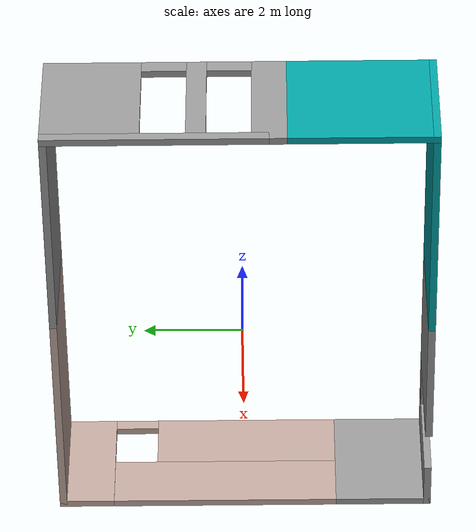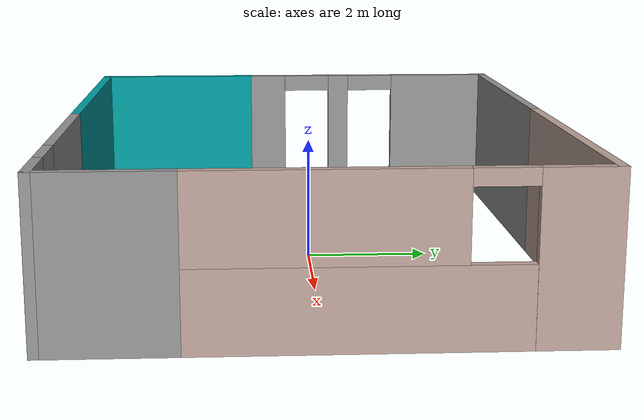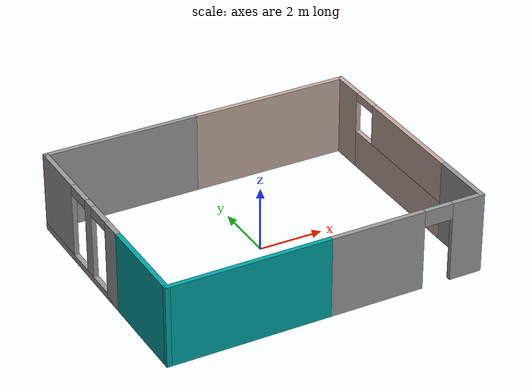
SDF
<?xml version='1.0'?>
<sdf version='1.7'>
  <model name='my_building_p4_small'>
    <link name='Wall_16'>
      <pose>-2.425 3.85 0 0 -0 0</pose>
      <self_collide>0</self_collide>
      <enable_wind>0</enable_wind>
      <kinematic>0</kinematic>
      <gravity>1</gravity>
      <inertial>
        <mass>1</mass>
        <pose>0 0 0 0 -0 0</pose>
        <inertia>
          <ixx>1</ixx>
          <ixy>0</ixy>
          <ixz>0</ixz>
          <iyy>1</iyy>
          <iyz>0</iyz>
          <izz>1</izz>
        </inertia>
      </inertial>
      <visual name='Wall_16_Visual'>
        <pose>-0.075 0 1.25 0 -0 0</pose>
        <geometry>
          <box>
            <size>4.85 0.15 2.5</size>
          </box>
        </geometry>
        <material>
          <script>
            <uri>file://media/materials/scripts/gazebo.material</uri>
            <name>Gazebo/Grey</name>
          </script>
          <ambient>1 1 1 1</ambient>
          <shader type='pixel'>
            <normal_map>__default__</normal_map>
          </shader>
          <diffuse>0.7 0.7 0.7 1</diffuse>
          <specular>0.01 0.01 0.01 1</specular>
          <emissive>0 0 0 1</emissive>
        </material>
        <meta>
          <layer>0</layer>
        </meta>
        <transparency>0</transparency>
        <cast_shadows>1</cast_shadows>
      </visual>
      <collision name='Wall_16_Collision'>
        <laser_retro>0</laser_retro>
        <max_contacts>10</max_contacts>
        <pose>-0.075 0 1.25 0 -0 0</pose>
        <geometry>
          <box>
            <size>4.85 0.15 2.5</size>
          </box>
        </geometry>
        <surface>
          <friction>
            <ode>
              <mu>1</mu>
              <mu2>1</mu2>
              <fdir1>0 0 0</fdir1>
              <slip1>0</slip1>
              <slip2>0</slip2>
            </ode>
            <torsional>
              <coefficient>1</coefficient>
              <patch_radius>0</patch_radius>
              <surface_radius>0</surface_radius>
              <use_patch_radius>1</use_patch_radius>
              <ode>
                <slip>0</slip>
              </ode>
            </torsional>
          </friction>
          <bounce>
            <restitution_coefficient>0</restitution_coefficient>
            <threshold>1e+06</threshold>
          </bounce>
          <contact>
            <collide_without_contact>0</collide_without_contact>
            <collide_without_contact_bitmask>1</collide_without_contact_bitmask>
            <collide_bitmask>1</collide_bitmask>
            <ode>
              <soft_cfm>0</soft_cfm>
              <soft_erp>0.2</soft_erp>
              <kp>1e+13</kp>
              <kd>1</kd>
              <max_vel>0.01</max_vel>
              <min_depth>0</min_depth>
            </ode>
            <bullet>
              <split_impulse>1</split_impulse>
              <split_impulse_penetration_threshold>-0.01</split_impulse_penetration_threshold>
              <soft_cfm>0</soft_cfm>
              <soft_erp>0.2</soft_erp>
              <kp>1e+13</kp>
              <kd>1</kd>
            </bullet>
          </contact>
        </surface>
      </collision>
    </link>
    <link name='Wall_17'>
      <pose>2.425 3.85 0 0 -0 0</pose>
      <self_collide>0</self_collide>
      <enable_wind>0</enable_wind>
      <kinematic>0</kinematic>
      <gravity>1</gravity>
      <inertial>
        <mass>1</mass>
        <pose>0 0 0 0 -0 0</pose>
        <inertia>
          <ixx>1</ixx>
          <ixy>0</ixy>
          <ixz>0</ixz>
          <iyy>1</iyy>
          <iyz>0</iyz>
          <izz>1</izz>
        </inertia>
      </inertial>
      <visual name='Wall_17_Visual'>
        <pose>0 0 1.25 0 -0 0</pose>
        <geometry>
          <box>
            <size>5 0.15 2.5</size>
          </box>
        </geometry>
        <material>
          <script>
            <uri>file://media/materials/scripts/gazebo.material</uri>
            <name>Gazebo/Grey</name>
          </script>
          <ambient>0.76 0.66 0.62 1</ambient>
          <shader type='pixel'>
            <normal_map>__default__</normal_map>
          </shader>
          <diffuse>0.76 0.66 0.62 1</diffuse>
          <specular>0.01 0.01 0.01 1</specular>
          <emissive>0 0 0 1</emissive>
        </material>
        <meta>
          <layer>0</layer>
        </meta>
        <transparency>0</transparency>
        <cast_shadows>1</cast_shadows>
      </visual>
      <collision name='Wall_17_Collision'>
        <laser_retro>0</laser_retro>
        <max_contacts>10</max_contacts>
        <pose>0 0 1.25 0 -0 0</pose>
        <geometry>
          <box>
            <size>5 0.15 2.5</size>
          </box>
        </geometry>
        <surface>
          <friction>
            <ode>
              <mu>1</mu>
              <mu2>1</mu2>
              <fdir1>0 0 0</fdir1>
              <slip1>0</slip1>
              <slip2>0</slip2>
            </ode>
            <torsional>
              <coefficient>1</coefficient>
              <patch_radius>0</patch_radius>
              <surface_radius>0</surface_radius>
              <use_patch_radius>1</use_patch_radius>
              <ode>
                <slip>0</slip>
              </ode>
            </torsional>
          </friction>
          <bounce>
            <restitution_coefficient>0</restitution_coefficient>
            <threshold>1e+06</threshold>
          </bounce>
          <contact>
            <collide_without_contact>0</collide_without_contact>
            <collide_without_contact_bitmask>1</collide_without_contact_bitmask>
            <collide_bitmask>1</collide_bitmask>
            <ode>
              <soft_cfm>0</soft_cfm>
              <soft_erp>0.2</soft_erp>
              <kp>1e+13</kp>
              <kd>1</kd>
              <max_vel>0.01</max_vel>
              <min_depth>0</min_depth>
            </ode>
            <bullet>
              <split_impulse>1</split_impulse>
              <split_impulse_penetration_threshold>-0.01</split_impulse_penetration_threshold>
              <soft_cfm>0</soft_cfm>
              <soft_erp>0.2</soft_erp>
              <kp>1e+13</kp>
              <kd>1</kd>
            </bullet>
          </contact>
        </surface>
      </collision>
    </link>
    <link name='Wall_18'>
      <pose>4.85 2.425 0 0 0 -1.5708</pose>
      <self_collide>0</self_collide>
      <enable_wind>0</enable_wind>
      <kinematic>0</kinematic>
      <gravity>1</gravity>
      <inertial>
        <mass>1</mass>
        <pose>0 0 0 0 -0 0</pose>
        <inertia>
          <ixx>1</ixx>
          <ixy>0</ixy>
          <ixz>0</ixz>
          <iyy>1</iyy>
          <iyz>0</iyz>
          <izz>1</izz>
        </inertia>
      </inertial>
      <visual name='Wall_18_Visual_0'>
        <pose>-0.925323 0 1.25 0 -0 0</pose>
        <geometry>
          <box>
            <size>1.14935 0.15 2.5</size>
          </box>
        </geometry>
        <material>
          <script>
            <uri>file://media/materials/scripts/gazebo.material</uri>
            <name>Gazebo/Grey</name>
          </script>
          <ambient>0.76 0.66 0.62 1</ambient>
          <shader type='pixel'>
            <normal_map>__default__</normal_map>
          </shader>
          <diffuse>0.76 0.66 0.62 1</diffuse>
          <specular>0.01 0.01 0.01 1</specular>
          <emissive>0 0 0 1</emissive>
        </material>
        <meta>
          <layer>0</layer>
        </meta>
        <transparency>0</transparency>
        <cast_shadows>1</cast_shadows>
      </visual>
      <visual name='Wall_18_Visual_3'>
        <pose>0.1 0 2.375 0 -0 0</pose>
        <geometry>
          <box>
            <size>0.9 0.15 0.25</size>
          </box>
        </geometry>
        <material>
          <script>
            <uri>file://media/materials/scripts/gazebo.material</uri>
            <name>Gazebo/Grey</name>
          </script>
          <ambient>0.76 0.66 0.62 1</ambient>
          <shader type='pixel'>
            <normal_map>__default__</normal_map>
          </shader>
          <diffuse>0.76 0.66 0.62 1</diffuse>
          <specular>0.01 0.01 0.01 1</specular>
          <emissive>0 0 0 1</emissive>
        </material>
        <meta>
          <layer>0</layer>
        </meta>
        <transparency>0</transparency>
        <cast_shadows>1</cast_shadows>
      </visual>
      <visual name='Wall_18_Visual_1'>
        <pose>2 0 0.6 0 -0 0</pose>
        <geometry>
          <box>
            <size>4.7 0.15 1.2</size>
          </box>
        </geometry>
        <material>
          <script>
            <uri>file://media/materials/scripts/gazebo.material</uri>
            <name>Gazebo/Grey</name>
          </script>
          <ambient>0.76 0.66 0.62 1</ambient>
          <shader type='pixel'>
            <normal_map>__default__</normal_map>
          </shader>
          <diffuse>0.76 0.66 0.62 1</diffuse>
          <specular>0.01 0.01 0.01 1</specular>
          <emissive>0 0 0 1</emissive>
        </material>
        <meta>
          <layer>0</layer>
        </meta>
        <transparency>0</transparency>
        <cast_shadows>1</cast_shadows>
      </visual>
      <visual name='Wall_18_Visual_2'>
        <pose>2.45 0 1.85 0 -0 0</pose>
        <geometry>
          <box>
            <size>3.8 0.15 1.3</size>
          </box>
        </geometry>
        <material>
          <script>
            <uri>file://media/materials/scripts/gazebo.material</uri>
            <name>Gazebo/Grey</name>
          </script>
          <ambient>0.76 0.66 0.62 1</ambient>
          <shader type='pixel'>
            <normal_map>__default__</normal_map>
          </shader>
          <diffuse>0.76 0.66 0.62 1</diffuse>
          <specular>0.01 0.01 0.01 1</specular>
          <emissive>0 0 0 1</emissive>
        </material>
        <meta>
          <layer>0</layer>
        </meta>
        <transparency>0</transparency>
        <cast_shadows>1</cast_shadows>
      </visual>
      <collision name='Wall_18_Collision_2'>
        <laser_retro>0</laser_retro>
        <max_contacts>10</max_contacts>
        <pose>2.45 0 1.85 0 -0 0</pose>
        <geometry>
          <box>
            <size>3.8 0.15 1.3</size>
          </box>
        </geometry>
        <surface>
          <friction>
            <ode>
              <mu>1</mu>
              <mu2>1</mu2>
              <fdir1>0 0 0</fdir1>
              <slip1>0</slip1>
              <slip2>0</slip2>
            </ode>
            <torsional>
              <coefficient>1</coefficient>
              <patch_radius>0</patch_radius>
              <surface_radius>0</surface_radius>
              <use_patch_radius>1</use_patch_radius>
              <ode>
                <slip>0</slip>
              </ode>
            </torsional>
          </friction>
          <bounce>
            <restitution_coefficient>0</restitution_coefficient>
            <threshold>1e+06</threshold>
          </bounce>
          <contact>
            <collide_without_contact>0</collide_without_contact>
            <collide_without_contact_bitmask>1</collide_without_contact_bitmask>
            <collide_bitmask>1</collide_bitmask>
            <ode>
              <soft_cfm>0</soft_cfm>
              <soft_erp>0.2</soft_erp>
              <kp>1e+13</kp>
              <kd>1</kd>
              <max_vel>0.01</max_vel>
              <min_depth>0</min_depth>
            </ode>
            <bullet>
              <split_impulse>1</split_impulse>
              <split_impulse_penetration_threshold>-0.01</split_impulse_penetration_threshold>
              <soft_cfm>0</soft_cfm>
              <soft_erp>0.2</soft_erp>
              <kp>1e+13</kp>
              <kd>1</kd>
            </bullet>
          </contact>
        </surface>
      </collision>
      <collision name='Wall_18_Collision_0'>
        <laser_retro>0</laser_retro>
        <max_contacts>10</max_contacts>
        <pose>-0.925323 0 1.25 0 -0 0</pose>
        <geometry>
          <box>
            <size>1.14935 0.15 2.5</size>
          </box>
        </geometry>
        <surface>
          <friction>
            <ode>
              <mu>1</mu>
              <mu2>1</mu2>
              <fdir1>0 0 0</fdir1>
              <slip1>0</slip1>
              <slip2>0</slip2>
            </ode>
            <torsional>
              <coefficient>1</coefficient>
              <patch_radius>0</patch_radius>
              <surface_radius>0</surface_radius>
              <use_patch_radius>1</use_patch_radius>
              <ode>
                <slip>0</slip>
              </ode>
            </torsional>
          </friction>
          <bounce>
            <restitution_coefficient>0</restitution_coefficient>
            <threshold>1e+06</threshold>
          </bounce>
          <contact>
            <collide_without_contact>0</collide_without_contact>
            <collide_without_contact_bitmask>1</collide_without_contact_bitmask>
            <collide_bitmask>1</collide_bitmask>
            <ode>
              <soft_cfm>0</soft_cfm>
              <soft_erp>0.2</soft_erp>
              <kp>1e+13</kp>
              <kd>1</kd>
              <max_vel>0.01</max_vel>
              <min_depth>0</min_depth>
            </ode>
            <bullet>
              <split_impulse>1</split_impulse>
              <split_impulse_penetration_threshold>-0.01</split_impulse_penetration_threshold>
              <soft_cfm>0</soft_cfm>
              <soft_erp>0.2</soft_erp>
              <kp>1e+13</kp>
              <kd>1</kd>
            </bullet>
          </contact>
        </surface>
      </collision>
      <collision name='Wall_18_Collision_1'>
        <laser_retro>0</laser_retro>
        <max_contacts>10</max_contacts>
        <pose>2 0 0.6 0 -0 0</pose>
        <geometry>
          <box>
            <size>4.7 0.15 1.2</size>
          </box>
        </geometry>
        <surface>
          <friction>
            <ode>
              <mu>1</mu>
              <mu2>1</mu2>
              <fdir1>0 0 0</fdir1>
              <slip1>0</slip1>
              <slip2>0</slip2>
            </ode>
            <torsional>
              <coefficient>1</coefficient>
              <patch_radius>0</patch_radius>
              <surface_radius>0</surface_radius>
              <use_patch_radius>1</use_patch_radius>
              <ode>
                <slip>0</slip>
              </ode>
            </torsional>
          </friction>
          <bounce>
            <restitution_coefficient>0</restitution_coefficient>
            <threshold>1e+06</threshold>
          </bounce>
          <contact>
            <collide_without_contact>0</collide_without_contact>
            <collide_without_contact_bitmask>1</collide_without_contact_bitmask>
            <collide_bitmask>1</collide_bitmask>
            <ode>
              <soft_cfm>0</soft_cfm>
              <soft_erp>0.2</soft_erp>
              <kp>1e+13</kp>
              <kd>1</kd>
              <max_vel>0.01</max_vel>
              <min_depth>0</min_depth>
            </ode>
            <bullet>
              <split_impulse>1</split_impulse>
              <split_impulse_penetration_threshold>-0.01</split_impulse_penetration_threshold>
              <soft_cfm>0</soft_cfm>
              <soft_erp>0.2</soft_erp>
              <kp>1e+13</kp>
              <kd>1</kd>
            </bullet>
          </contact>
        </surface>
      </collision>
      <collision name='Wall_18_Collision_3'>
        <laser_retro>0</laser_retro>
        <max_contacts>10</max_contacts>
        <pose>0.1 0 2.375 0 -0 0</pose>
        <geometry>
          <box>
            <size>0.9 0.15 0.25</size>
          </box>
        </geometry>
        <surface>
          <friction>
            <ode>
              <mu>1</mu>
              <mu2>1</mu2>
              <fdir1>0 0 0</fdir1>
              <slip1>0</slip1>
              <slip2>0</slip2>
            </ode>
            <torsional>
              <coefficient>1</coefficient>
              <patch_radius>0</patch_radius>
              <surface_radius>0</surface_radius>
              <use_patch_radius>1</use_patch_radius>
              <ode>
                <slip>0</slip>
              </ode>
            </torsional>
          </friction>
          <bounce>
            <restitution_coefficient>0</restitution_coefficient>
            <threshold>1e+06</threshold>
          </bounce>
          <contact>
            <collide_without_contact>0</collide_without_contact>
            <collide_without_contact_bitmask>1</collide_without_contact_bitmask>
            <collide_bitmask>1</collide_bitmask>
            <ode>
              <soft_cfm>0</soft_cfm>
              <soft_erp>0.2</soft_erp>
              <kp>1e+13</kp>
              <kd>1</kd>
              <max_vel>0.01</max_vel>
              <min_depth>0</min_depth>
            </ode>
            <bullet>
              <split_impulse>1</split_impulse>
              <split_impulse_penetration_threshold>-0.01</split_impulse_penetration_threshold>
              <soft_cfm>0</soft_cfm>
              <soft_erp>0.2</soft_erp>
              <kp>1e+13</kp>
              <kd>1</kd>
            </bullet>
          </contact>
        </surface>
      </collision>
    </link>
    <link name='Wall_19'>
      <pose>4.85 -1.425 0 0 0 -1.5708</pose>
      <self_collide>0</self_collide>
      <enable_wind>0</enable_wind>
      <kinematic>0</kinematic>
      <gravity>1</gravity>
      <inertial>
        <mass>1</mass>
        <pose>0 0 0 0 -0 0</pose>
        <inertia>
          <ixx>1</ixx>
          <ixy>0</ixy>
          <ixz>0</ixz>
          <iyy>1</iyy>
          <iyz>0</iyz>
          <izz>1</izz>
        </inertia>
      </inertial>
      <visual name='Wall_19_Visual'>
        <pose>1.5 0 1.25 0 -0 0</pose>
        <geometry>
          <box>
            <size>2 0.15 2.5</size>
          </box>
        </geometry>
        <material>
          <script>
            <uri>file://media/materials/scripts/gazebo.material</uri>
            <name>Gazebo/Grey</name>
          </script>
          <ambient>1 1 1 1</ambient>
          <shader type='pixel'>
            <normal_map>__default__</normal_map>
          </shader>
          <diffuse>0.7 0.7 0.7 1</diffuse>
          <specular>0.01 0.01 0.01 1</specular>
          <emissive>0 0 0 1</emissive>
        </material>
        <meta>
          <layer>0</layer>
        </meta>
        <transparency>0</transparency>
        <cast_shadows>1</cast_shadows>
      </visual>
      <collision name='Wall_19_Collision'>
        <laser_retro>0</laser_retro>
        <max_contacts>10</max_contacts>
        <pose>1.5 0 1.25 0 -0 0</pose>
        <geometry>
          <box>
            <size>2 0.15 2.5</size>
          </box>
        </geometry>
        <surface>
          <friction>
            <ode>
              <mu>1</mu>
              <mu2>1</mu2>
              <fdir1>0 0 0</fdir1>
              <slip1>0</slip1>
              <slip2>0</slip2>
            </ode>
            <torsional>
              <coefficient>1</coefficient>
              <patch_radius>0</patch_radius>
              <surface_radius>0</surface_radius>
              <use_patch_radius>1</use_patch_radius>
              <ode>
                <slip>0</slip>
              </ode>
            </torsional>
          </friction>
          <bounce>
            <restitution_coefficient>0</restitution_coefficient>
            <threshold>1e+06</threshold>
          </bounce>
          <contact>
            <collide_without_contact>0</collide_without_contact>
            <collide_without_contact_bitmask>1</collide_without_contact_bitmask>
            <collide_bitmask>1</collide_bitmask>
            <ode>
              <soft_cfm>0</soft_cfm>
              <soft_erp>0.2</soft_erp>
              <kp>1e+13</kp>
              <kd>1</kd>
              <max_vel>0.01</max_vel>
              <min_depth>0</min_depth>
            </ode>
            <bullet>
              <split_impulse>1</split_impulse>
              <split_impulse_penetration_threshold>-0.01</split_impulse_penetration_threshold>
              <soft_cfm>0</soft_cfm>
              <soft_erp>0.2</soft_erp>
              <kp>1e+13</kp>
              <kd>1</kd>
            </bullet>
          </contact>
        </surface>
      </collision>
    </link>
    <link name='Wall_20'>
      <pose>2.425 -3.85 0 0 -0 3.14159</pose>
      <self_collide>0</self_collide>
      <enable_wind>0</enable_wind>
      <kinematic>0</kinematic>
      <gravity>1</gravity>
      <inertial>
        <mass>1</mass>
        <pose>0 0 0 0 -0 0</pose>
        <inertia>
          <ixx>1</ixx>
          <ixy>0</ixy>
          <ixz>0</ixz>
          <iyy>1</iyy>
          <iyz>0</iyz>
          <izz>1</izz>
        </inertia>
      </inertial>
      <visual name='Wall_20_Visual_0'>
        <pose>-1.9855 0 1.25 0 -0 0</pose>
        <geometry>
          <box>
            <size>1.02901 0.15 2.5</size>
          </box>
        </geometry>
        <material>
          <script>
            <uri>file://media/materials/scripts/gazebo.material</uri>
            <name>Gazebo/Grey</name>
          </script>
          <ambient>1 1 1 1</ambient>
          <shader type='pixel'>
            <normal_map>__default__</normal_map>
          </shader>
          <diffuse>0.7 0.7 0.7 1</diffuse>
          <specular>0.01 0.01 0.01 1</specular>
          <emissive>0 0 0 1</emissive>
        </material>
        <meta>
          <layer>0</layer>
        </meta>
        <transparency>0</transparency>
        <cast_shadows>1</cast_shadows>
      </visual>
      <visual name='Wall_20_Visual_1'>
        <pose>0.89 0 1.25 0 -0 0</pose>
        <geometry>
          <box>
            <size>2.92 0.15 2.5</size>
          </box>
        </geometry>
        <material>
          <script>
            <uri>file://media/materials/scripts/gazebo.material</uri>
            <name>Gazebo/Grey</name>
          </script>
          <ambient>1 1 1 1</ambient>
          <shader type='pixel'>
            <normal_map>__default__</normal_map>
          </shader>
          <diffuse>0.7 0.7 0.7 1</diffuse>
          <specular>0.01 0.01 0.01 1</specular>
          <emissive>0 0 0 1</emissive>
        </material>
        <meta>
          <layer>0</layer>
        </meta>
        <transparency>0</transparency>
        <cast_shadows>1</cast_shadows>
      </visual>
      <visual name='Wall_20_Visual_2'>
        <pose>-1.02099 0 2.25 0 -0 0</pose>
        <geometry>
          <box>
            <size>0.9 0.15 0.5</size>
          </box>
        </geometry>
        <material>
          <script>
            <uri>file://media/materials/scripts/gazebo.material</uri>
            <name>Gazebo/Grey</name>
          </script>
          <ambient>1 1 1 1</ambient>
          <shader type='pixel'>
            <normal_map>__default__</normal_map>
          </shader>
          <diffuse>0.7 0.7 0.7 1</diffuse>
          <specular>0.01 0.01 0.01 1</specular>
          <emissive>0 0 0 1</emissive>
        </material>
        <meta>
          <layer>0</layer>
        </meta>
        <transparency>0</transparency>
        <cast_shadows>1</cast_shadows>
      </visual>
      <collision name='Wall_20_Collision_2'>
        <laser_retro>0</laser_retro>
        <max_contacts>10</max_contacts>
        <pose>-1.02099 0 2.25 0 -0 0</pose>
        <geometry>
          <box>
            <size>0.9 0.15 0.5</size>
          </box>
        </geometry>
        <surface>
          <friction>
            <ode>
              <mu>1</mu>
              <mu2>1</mu2>
              <fdir1>0 0 0</fdir1>
              <slip1>0</slip1>
              <slip2>0</slip2>
            </ode>
            <torsional>
              <coefficient>1</coefficient>
              <patch_radius>0</patch_radius>
              <surface_radius>0</surface_radius>
              <use_patch_radius>1</use_patch_radius>
              <ode>
                <slip>0</slip>
              </ode>
            </torsional>
          </friction>
          <bounce>
            <restitution_coefficient>0</restitution_coefficient>
            <threshold>1e+06</threshold>
          </bounce>
          <contact>
            <collide_without_contact>0</collide_without_contact>
            <collide_without_contact_bitmask>1</collide_without_contact_bitmask>
            <collide_bitmask>1</collide_bitmask>
            <ode>
              <soft_cfm>0</soft_cfm>
              <soft_erp>0.2</soft_erp>
              <kp>1e+13</kp>
              <kd>1</kd>
              <max_vel>0.01</max_vel>
              <min_depth>0</min_depth>
            </ode>
            <bullet>
              <split_impulse>1</split_impulse>
              <split_impulse_penetration_threshold>-0.01</split_impulse_penetration_threshold>
              <soft_cfm>0</soft_cfm>
              <soft_erp>0.2</soft_erp>
              <kp>1e+13</kp>
              <kd>1</kd>
            </bullet>
          </contact>
        </surface>
      </collision>
      <collision name='Wall_20_Collision_1'>
        <laser_retro>0</laser_retro>
        <max_contacts>10</max_contacts>
        <pose>0.89 0 1.25 0 -0 0</pose>
        <geometry>
          <box>
            <size>2.92 0.15 2.5</size>
          </box>
        </geometry>
        <surface>
          <friction>
            <ode>
              <mu>1</mu>
              <mu2>1</mu2>
              <fdir1>0 0 0</fdir1>
              <slip1>0</slip1>
              <slip2>0</slip2>
            </ode>
            <torsional>
              <coefficient>1</coefficient>
              <patch_radius>0</patch_radius>
              <surface_radius>0</surface_radius>
              <use_patch_radius>1</use_patch_radius>
              <ode>
                <slip>0</slip>
              </ode>
            </torsional>
          </friction>
          <bounce>
            <restitution_coefficient>0</restitution_coefficient>
            <threshold>1e+06</threshold>
          </bounce>
          <contact>
            <collide_without_contact>0</collide_without_contact>
            <collide_without_contact_bitmask>1</collide_without_contact_bitmask>
            <collide_bitmask>1</collide_bitmask>
            <ode>
              <soft_cfm>0</soft_cfm>
              <soft_erp>0.2</soft_erp>
              <kp>1e+13</kp>
              <kd>1</kd>
              <max_vel>0.01</max_vel>
              <min_depth>0</min_depth>
            </ode>
            <bullet>
              <split_impulse>1</split_impulse>
              <split_impulse_penetration_threshold>-0.01</split_impulse_penetration_threshold>
              <soft_cfm>0</soft_cfm>
              <soft_erp>0.2</soft_erp>
              <kp>1e+13</kp>
              <kd>1</kd>
            </bullet>
          </contact>
        </surface>
      </collision>
      <collision name='Wall_20_Collision_0'>
        <laser_retro>0</laser_retro>
        <max_contacts>10</max_contacts>
        <pose>-1.9855 0 1.25 0 -0 0</pose>
        <geometry>
          <box>
            <size>1.02901 0.15 2.5</size>
          </box>
        </geometry>
        <surface>
          <friction>
            <ode>
              <mu>1</mu>
              <mu2>1</mu2>
              <fdir1>0 0 0</fdir1>
              <slip1>0</slip1>
              <slip2>0</slip2>
            </ode>
            <torsional>
              <coefficient>1</coefficient>
              <patch_radius>0</patch_radius>
              <surface_radius>0</surface_radius>
              <use_patch_radius>1</use_patch_radius>
              <ode>
                <slip>0</slip>
              </ode>
            </torsional>
          </friction>
          <bounce>
            <restitution_coefficient>0</restitution_coefficient>
            <threshold>1e+06</threshold>
          </bounce>
          <contact>
            <collide_without_contact>0</collide_without_contact>
            <collide_without_contact_bitmask>1</collide_without_contact_bitmask>
            <collide_bitmask>1</collide_bitmask>
            <ode>
              <soft_cfm>0</soft_cfm>
              <soft_erp>0.2</soft_erp>
              <kp>1e+13</kp>
              <kd>1</kd>
              <max_vel>0.01</max_vel>
              <min_depth>0</min_depth>
            </ode>
            <bullet>
              <split_impulse>1</split_impulse>
              <split_impulse_penetration_threshold>-0.01</split_impulse_penetration_threshold>
              <soft_cfm>0</soft_cfm>
              <soft_erp>0.2</soft_erp>
              <kp>1e+13</kp>
              <kd>1</kd>
            </bullet>
          </contact>
        </surface>
      </collision>
    </link>
    <link name='Wall_21'>
      <pose>-2.425 -3.85 0 0 -0 3.14159</pose>
      <self_collide>0</self_collide>
      <enable_wind>0</enable_wind>
      <kinematic>0</kinematic>
      <gravity>1</gravity>
      <inertial>
        <mass>1</mass>
        <pose>0 0 0 0 -0 0</pose>
        <inertia>
          <ixx>1</ixx>
          <ixy>0</ixy>
          <ixz>0</ixz>
          <iyy>1</iyy>
          <iyz>0</iyz>
          <izz>1</izz>
        </inertia>
      </inertial>
      <visual name='Wall_21_Visual'>
        <pose>0 0 1.25 0 -0 0</pose>
        <geometry>
          <box>
            <size>5 0.15 2.5</size>
          </box>
        </geometry>
        <material>
          <script>
            <uri>file://media/materials/scripts/gazebo.material</uri>
            <name>Gazebo/Grey</name>
          </script>
          <ambient>0 0.64 0.65 1</ambient>
          <shader type='pixel'>
            <normal_map>__default__</normal_map>
          </shader>
          <diffuse>0 0.64 0.65 1</diffuse>
          <specular>0.01 0.01 0.01 1</specular>
          <emissive>0 0 0 1</emissive>
        </material>
        <meta>
          <layer>0</layer>
        </meta>
        <transparency>0</transparency>
        <cast_shadows>1</cast_shadows>
      </visual>
      <collision name='Wall_21_Collision'>
        <laser_retro>0</laser_retro>
        <max_contacts>10</max_contacts>
        <pose>0 0 1.25 0 -0 0</pose>
        <geometry>
          <box>
            <size>5 0.15 2.5</size>
          </box>
        </geometry>
        <surface>
          <friction>
            <ode>
              <mu>1</mu>
              <mu2>1</mu2>
              <fdir1>0 0 0</fdir1>
              <slip1>0</slip1>
              <slip2>0</slip2>
            </ode>
            <torsional>
              <coefficient>1</coefficient>
              <patch_radius>0</patch_radius>
              <surface_radius>0</surface_radius>
              <use_patch_radius>1</use_patch_radius>
              <ode>
                <slip>0</slip>
              </ode>
            </torsional>
          </friction>
          <bounce>
            <restitution_coefficient>0</restitution_coefficient>
            <threshold>1e+06</threshold>
          </bounce>
          <contact>
            <collide_without_contact>0</collide_without_contact>
            <collide_without_contact_bitmask>1</collide_without_contact_bitmask>
            <collide_bitmask>1</collide_bitmask>
            <ode>
              <soft_cfm>0</soft_cfm>
              <soft_erp>0.2</soft_erp>
              <kp>1e+13</kp>
              <kd>1</kd>
              <max_vel>0.01</max_vel>
              <min_depth>0</min_depth>
            </ode>
            <bullet>
              <split_impulse>1</split_impulse>
              <split_impulse_penetration_threshold>-0.01</split_impulse_penetration_threshold>
              <soft_cfm>0</soft_cfm>
              <soft_erp>0.2</soft_erp>
              <kp>1e+13</kp>
              <kd>1</kd>
            </bullet>
          </contact>
        </surface>
      </collision>
    </link>
    <link name='Wall_22'>
      <pose>-4.85 -2.425 0 0 -0 1.5708</pose>
      <self_collide>0</self_collide>
      <enable_wind>0</enable_wind>
      <kinematic>0</kinematic>
      <gravity>1</gravity>
      <inertial>
        <mass>1</mass>
        <pose>0 0 0 0 -0 0</pose>
        <inertia>
          <ixx>1</ixx>
          <ixy>0</ixy>
          <ixz>0</ixz>
          <iyy>1</iyy>
          <iyz>0</iyz>
          <izz>1</izz>
        </inertia>
      </inertial>
      <visual name='Wall_22_Visual'>
        <pose>0 0 1.25 0 -0 0</pose>
        <geometry>
          <box>
            <size>3 0.15 2.5</size>
          </box>
        </geometry>
        <material>
          <script>
            <uri>file://media/materials/scripts/gazebo.material</uri>
            <name>Gazebo/Grey</name>
          </script>
          <ambient>0 0.64 0.65 1</ambient>
          <shader type='pixel'>
            <normal_map>__default__</normal_map>
          </shader>
          <diffuse>0 0.64 0.65 1</diffuse>
          <specular>0.01 0.01 0.01 1</specular>
          <emissive>0 0 0 1</emissive>
        </material>
        <meta>
          <layer>0</layer>
        </meta>
        <transparency>0</transparency>
        <cast_shadows>1</cast_shadows>
      </visual>
      <collision name='Wall_22_Collision'>
        <laser_retro>0</laser_retro>
        <max_contacts>10</max_contacts>
        <pose>0 0 1.25 0 -0 0</pose>
        <geometry>
          <box>
            <size>3 0.15 2.5</size>
          </box>
        </geometry>
        <surface>
          <friction>
            <ode>
              <mu>1</mu>
              <mu2>1</mu2>
              <fdir1>0 0 0</fdir1>
              <slip1>0</slip1>
              <slip2>0</slip2>
            </ode>
            <torsional>
              <coefficient>1</coefficient>
              <patch_radius>0</patch_radius>
              <surface_radius>0</surface_radius>
              <use_patch_radius>1</use_patch_radius>
              <ode>
                <slip>0</slip>
              </ode>
            </torsional>
          </friction>
          <bounce>
            <restitution_coefficient>0</restitution_coefficient>
            <threshold>1e+06</threshold>
          </bounce>
          <contact>
            <collide_without_contact>0</collide_without_contact>
            <collide_without_contact_bitmask>1</collide_without_contact_bitmask>
            <collide_bitmask>1</collide_bitmask>
            <ode>
              <soft_cfm>0</soft_cfm>
              <soft_erp>0.2</soft_erp>
              <kp>1e+13</kp>
              <kd>1</kd>
              <max_vel>0.01</max_vel>
              <min_depth>0</min_depth>
            </ode>
            <bullet>
              <split_impulse>1</split_impulse>
              <split_impulse_penetration_threshold>-0.01</split_impulse_penetration_threshold>
              <soft_cfm>0</soft_cfm>
              <soft_erp>0.2</soft_erp>
              <kp>1e+13</kp>
              <kd>1</kd>
            </bullet>
          </contact>
        </surface>
      </collision>
    </link>
    <link name='Wall_23'>
      <pose>-4.85 1.425 0 0 -0 1.5708</pose>
      <self_collide>0</self_collide>
      <enable_wind>0</enable_wind>
      <kinematic>0</kinematic>
      <gravity>1</gravity>
      <inertial>
        <mass>1</mass>
        <pose>0 0 0 0 -0 0</pose>
        <inertia>
          <ixx>1</ixx>
          <ixy>0</ixy>
          <ixz>0</ixz>
          <iyy>1</iyy>
          <iyz>0</iyz>
          <izz>1</izz>
        </inertia>
      </inertial>
      <visual name='Wall_23_Visual_0'>
        <pose>-2 0 1.25 0 -0 0</pose>
        <geometry>
          <box>
            <size>0.7 0.15 2.5</size>
          </box>
        </geometry>
        <material>
          <script>
            <uri>file://media/materials/scripts/gazebo.material</uri>
            <name>Gazebo/Grey</name>
          </script>
          <ambient>1 1 1 1</ambient>
          <shader type='pixel'>
            <normal_map>__default__</normal_map>
          </shader>
          <diffuse>0.7 0.7 0.7 1</diffuse>
          <specular>0.01 0.01 0.01 1</specular>
          <emissive>0 0 0 1</emissive>
        </material>
        <meta>
          <layer>0</layer>
        </meta>
        <transparency>0</transparency>
        <cast_shadows>1</cast_shadows>
      </visual>
      <visual name='Wall_23_Visual_3'>
        <pose>1.51852 0 1.35 0 -0 0</pose>
        <geometry>
          <box>
            <size>1.96296 0.15 2.3</size>
          </box>
        </geometry>
        <material>
          <script>
            <uri>file://media/materials/scripts/gazebo.material</uri>
            <name>Gazebo/Grey</name>
          </script>
          <ambient>1 1 1 1</ambient>
          <shader type='pixel'>
            <normal_map>__default__</normal_map>
          </shader>
          <diffuse>0.7 0.7 0.7 1</diffuse>
          <specular>0.01 0.01 0.01 1</specular>
          <emissive>0 0 0 1</emissive>
        </material>
        <meta>
          <layer>0</layer>
        </meta>
        <transparency>0</transparency>
        <cast_shadows>1</cast_shadows>
      </visual>
      <visual name='Wall_23_Visual_1'>
        <pose>0.253061 0 0.1 0 -0 0</pose>
        <geometry>
          <box>
            <size>4.49388 0.15 0.2</size>
          </box>
        </geometry>
        <material>
          <script>
            <uri>file://media/materials/scripts/gazebo.material</uri>
            <name>Gazebo/Grey</name>
          </script>
          <ambient>1 1 1 1</ambient>
          <shader type='pixel'>
            <normal_map>__default__</normal_map>
          </shader>
          <diffuse>0.7 0.7 0.7 1</diffuse>
          <specular>0.01 0.01 0.01 1</specular>
          <emissive>0 0 0 1</emissive>
        </material>
        <meta>
          <layer>0</layer>
        </meta>
        <transparency>0</transparency>
        <cast_shadows>1</cast_shadows>
      </visual>
      <visual name='Wall_23_Visual_4'>
        <pose>-1.213 0 2.35 0 -0 0</pose>
        <geometry>
          <box>
            <size>0.9 0.15 0.3</size>
          </box>
        </geometry>
        <material>
          <script>
            <uri>file://media/materials/scripts/gazebo.material</uri>
            <name>Gazebo/Grey</name>
          </script>
          <ambient>1 1 1 1</ambient>
          <shader type='pixel'>
            <normal_map>__default__</normal_map>
          </shader>
          <diffuse>0.7 0.7 0.7 1</diffuse>
          <specular>0.01 0.01 0.01 1</specular>
          <emissive>0 0 0 1</emissive>
        </material>
        <meta>
          <layer>0</layer>
        </meta>
        <transparency>0</transparency>
        <cast_shadows>1</cast_shadows>
      </visual>
      <visual name='Wall_23_Visual_5'>
        <pose>0.087039 0 2.35 0 -0 0</pose>
        <geometry>
          <box>
            <size>0.9 0.15 0.3</size>
          </box>
        </geometry>
        <material>
          <script>
            <uri>file://media/materials/scripts/gazebo.material</uri>
            <name>Gazebo/Grey</name>
          </script>
          <ambient>1 1 1 1</ambient>
          <shader type='pixel'>
            <normal_map>__default__</normal_map>
          </shader>
          <diffuse>0.7 0.7 0.7 1</diffuse>
          <specular>0.01 0.01 0.01 1</specular>
          <emissive>0 0 0 1</emissive>
        </material>
        <meta>
          <layer>0</layer>
        </meta>
        <transparency>0</transparency>
        <cast_shadows>1</cast_shadows>
      </visual>
      <visual name='Wall_23_Visual_2'>
        <pose>-0.563 0 1.35 0 -0 0</pose>
        <geometry>
          <box>
            <size>0.4 0.15 2.3</size>
          </box>
        </geometry>
        <material>
          <script>
            <uri>file://media/materials/scripts/gazebo.material</uri>
            <name>Gazebo/Grey</name>
          </script>
          <ambient>1 1 1 1</ambient>
          <shader type='pixel'>
            <normal_map>__default__</normal_map>
          </shader>
          <diffuse>0.7 0.7 0.7 1</diffuse>
          <specular>0.01 0.01 0.01 1</specular>
          <emissive>0 0 0 1</emissive>
        </material>
        <meta>
          <layer>0</layer>
        </meta>
        <transparency>0</transparency>
        <cast_shadows>1</cast_shadows>
      </visual>
      <collision name='Wall_23_Collision_5'>
        <laser_retro>0</laser_retro>
        <max_contacts>10</max_contacts>
        <pose>0.087039 0 2.35 0 -0 0</pose>
        <geometry>
          <box>
            <size>0.9 0.15 0.3</size>
          </box>
        </geometry>
        <surface>
          <friction>
            <ode>
              <mu>1</mu>
              <mu2>1</mu2>
              <fdir1>0 0 0</fdir1>
              <slip1>0</slip1>
              <slip2>0</slip2>
            </ode>
            <torsional>
              <coefficient>1</coefficient>
              <patch_radius>0</patch_radius>
              <surface_radius>0</surface_radius>
              <use_patch_radius>1</use_patch_radius>
              <ode>
                <slip>0</slip>
              </ode>
            </torsional>
          </friction>
          <bounce>
            <restitution_coefficient>0</restitution_coefficient>
            <threshold>1e+06</threshold>
          </bounce>
          <contact>
            <collide_without_contact>0</collide_without_contact>
            <collide_without_contact_bitmask>1</collide_without_contact_bitmask>
            <collide_bitmask>1</collide_bitmask>
            <ode>
              <soft_cfm>0</soft_cfm>
              <soft_erp>0.2</soft_erp>
              <kp>1e+13</kp>
              <kd>1</kd>
              <max_vel>0.01</max_vel>
              <min_depth>0</min_depth>
            </ode>
            <bullet>
              <split_impulse>1</split_impulse>
              <split_impulse_penetration_threshold>-0.01</split_impulse_penetration_threshold>
              <soft_cfm>0</soft_cfm>
              <soft_erp>0.2</soft_erp>
              <kp>1e+13</kp>
              <kd>1</kd>
            </bullet>
          </contact>
        </surface>
      </collision>
      <collision name='Wall_23_Collision_1'>
        <laser_retro>0</laser_retro>
        <max_contacts>10</max_contacts>
        <pose>0.253061 0 0.1 0 -0 0</pose>
        <geometry>
          <box>
            <size>4.49388 0.15 0.2</size>
          </box>
        </geometry>
        <surface>
          <friction>
            <ode>
              <mu>1</mu>
              <mu2>1</mu2>
              <fdir1>0 0 0</fdir1>
              <slip1>0</slip1>
              <slip2>0</slip2>
            </ode>
            <torsional>
              <coefficient>1</coefficient>
              <patch_radius>0</patch_radius>
              <surface_radius>0</surface_radius>
              <use_patch_radius>1</use_patch_radius>
              <ode>
                <slip>0</slip>
              </ode>
            </torsional>
          </friction>
          <bounce>
            <restitution_coefficient>0</restitution_coefficient>
            <threshold>1e+06</threshold>
          </bounce>
          <contact>
            <collide_without_contact>0</collide_without_contact>
            <collide_without_contact_bitmask>1</collide_without_contact_bitmask>
            <collide_bitmask>1</collide_bitmask>
            <ode>
              <soft_cfm>0</soft_cfm>
              <soft_erp>0.2</soft_erp>
              <kp>1e+13</kp>
              <kd>1</kd>
              <max_vel>0.01</max_vel>
              <min_depth>0</min_depth>
            </ode>
            <bullet>
              <split_impulse>1</split_impulse>
              <split_impulse_penetration_threshold>-0.01</split_impulse_penetration_threshold>
              <soft_cfm>0</soft_cfm>
              <soft_erp>0.2</soft_erp>
              <kp>1e+13</kp>
              <kd>1</kd>
            </bullet>
          </contact>
        </surface>
      </collision>
      <collision name='Wall_23_Collision_3'>
        <laser_retro>0</laser_retro>
        <max_contacts>10</max_contacts>
        <pose>1.51852 0 1.35 0 -0 0</pose>
        <geometry>
          <box>
            <size>1.96296 0.15 2.3</size>
          </box>
        </geometry>
        <surface>
          <friction>
            <ode>
              <mu>1</mu>
              <mu2>1</mu2>
              <fdir1>0 0 0</fdir1>
              <slip1>0</slip1>
              <slip2>0</slip2>
            </ode>
            <torsional>
              <coefficient>1</coefficient>
              <patch_radius>0</patch_radius>
              <surface_radius>0</surface_radius>
              <use_patch_radius>1</use_patch_radius>
              <ode>
                <slip>0</slip>
              </ode>
            </torsional>
          </friction>
          <bounce>
            <restitution_coefficient>0</restitution_coefficient>
            <threshold>1e+06</threshold>
          </bounce>
          <contact>
            <collide_without_contact>0</collide_without_contact>
            <collide_without_contact_bitmask>1</collide_without_contact_bitmask>
            <collide_bitmask>1</collide_bitmask>
            <ode>
              <soft_cfm>0</soft_cfm>
              <soft_erp>0.2</soft_erp>
              <kp>1e+13</kp>
              <kd>1</kd>
              <max_vel>0.01</max_vel>
              <min_depth>0</min_depth>
            </ode>
            <bullet>
              <split_impulse>1</split_impulse>
              <split_impulse_penetration_threshold>-0.01</split_impulse_penetration_threshold>
              <soft_cfm>0</soft_cfm>
              <soft_erp>0.2</soft_erp>
              <kp>1e+13</kp>
              <kd>1</kd>
            </bullet>
          </contact>
        </surface>
      </collision>
      <collision name='Wall_23_Collision_4'>
        <laser_retro>0</laser_retro>
        <max_contacts>10</max_contacts>
        <pose>-1.213 0 2.35 0 -0 0</pose>
        <geometry>
          <box>
            <size>0.9 0.15 0.3</size>
          </box>
        </geometry>
        <surface>
          <friction>
            <ode>
              <mu>1</mu>
              <mu2>1</mu2>
              <fdir1>0 0 0</fdir1>
              <slip1>0</slip1>
              <slip2>0</slip2>
            </ode>
            <torsional>
              <coefficient>1</coefficient>
              <patch_radius>0</patch_radius>
              <surface_radius>0</surface_radius>
              <use_patch_radius>1</use_patch_radius>
              <ode>
                <slip>0</slip>
              </ode>
            </torsional>
          </friction>
          <bounce>
            <restitution_coefficient>0</restitution_coefficient>
            <threshold>1e+06</threshold>
          </bounce>
          <contact>
            <collide_without_contact>0</collide_without_contact>
            <collide_without_contact_bitmask>1</collide_without_contact_bitmask>
            <collide_bitmask>1</collide_bitmask>
            <ode>
              <soft_cfm>0</soft_cfm>
              <soft_erp>0.2</soft_erp>
              <kp>1e+13</kp>
              <kd>1</kd>
              <max_vel>0.01</max_vel>
              <min_depth>0</min_depth>
            </ode>
            <bullet>
              <split_impulse>1</split_impulse>
              <split_impulse_penetration_threshold>-0.01</split_impulse_penetration_threshold>
              <soft_cfm>0</soft_cfm>
              <soft_erp>0.2</soft_erp>
              <kp>1e+13</kp>
              <kd>1</kd>
            </bullet>
          </contact>
        </surface>
      </collision>
      <collision name='Wall_23_Collision_0'>
        <laser_retro>0</laser_retro>
        <max_contacts>10</max_contacts>
        <pose>-2 0 1.25 0 -0 0</pose>
        <geometry>
          <box>
            <size>0.7 0.15 2.5</size>
          </box>
        </geometry>
        <surface>
          <friction>
            <ode>
              <mu>1</mu>
              <mu2>1</mu2>
              <fdir1>0 0 0</fdir1>
              <slip1>0</slip1>
              <slip2>0</slip2>
            </ode>
            <torsional>
              <coefficient>1</coefficient>
              <patch_radius>0</patch_radius>
              <surface_radius>0</surface_radius>
              <use_patch_radius>1</use_patch_radius>
              <ode>
                <slip>0</slip>
              </ode>
            </torsional>
          </friction>
          <bounce>
            <restitution_coefficient>0</restitution_coefficient>
            <threshold>1e+06</threshold>
          </bounce>
          <contact>
            <collide_without_contact>0</collide_without_contact>
            <collide_without_contact_bitmask>1</collide_without_contact_bitmask>
            <collide_bitmask>1</collide_bitmask>
            <ode>
              <soft_cfm>0</soft_cfm>
              <soft_erp>0.2</soft_erp>
              <kp>1e+13</kp>
              <kd>1</kd>
              <max_vel>0.01</max_vel>
              <min_depth>0</min_depth>
            </ode>
            <bullet>
              <split_impulse>1</split_impulse>
              <split_impulse_penetration_threshold>-0.01</split_impulse_penetration_threshold>
              <soft_cfm>0</soft_cfm>
              <soft_erp>0.2</soft_erp>
              <kp>1e+13</kp>
              <kd>1</kd>
            </bullet>
          </contact>
        </surface>
      </collision>
      <collision name='Wall_23_Collision_2'>
        <laser_retro>0</laser_retro>
        <max_contacts>10</max_contacts>
        <pose>-0.563 0 1.35 0 -0 0</pose>
        <geometry>
          <box>
            <size>0.4 0.15 2.3</size>
          </box>
        </geometry>
        <surface>
          <friction>
            <ode>
              <mu>1</mu>
              <mu2>1</mu2>
              <fdir1>0 0 0</fdir1>
              <slip1>0</slip1>
              <slip2>0</slip2>
            </ode>
            <torsional>
              <coefficient>1</coefficient>
              <patch_radius>0</patch_radius>
              <surface_radius>0</surface_radius>
              <use_patch_radius>1</use_patch_radius>
              <ode>
                <slip>0</slip>
              </ode>
            </torsional>
          </friction>
          <bounce>
            <restitution_coefficient>0</restitution_coefficient>
            <threshold>1e+06</threshold>
          </bounce>
          <contact>
            <collide_without_contact>0</collide_without_contact>
            <collide_without_contact_bitmask>1</collide_without_contact_bitmask>
            <collide_bitmask>1</collide_bitmask>
            <ode>
              <soft_cfm>0</soft_cfm>
              <soft_erp>0.2</soft_erp>
              <kp>1e+13</kp>
              <kd>1</kd>
              <max_vel>0.01</max_vel>
              <min_depth>0</min_depth>
            </ode>
            <bullet>
              <split_impulse>1</split_impulse>
              <split_impulse_penetration_threshold>-0.01</split_impulse_penetration_threshold>
              <soft_cfm>0</soft_cfm>
              <soft_erp>0.2</soft_erp>
              <kp>1e+13</kp>
              <kd>1</kd>
            </bullet>
          </contact>
        </surface>
      </collision>
    </link>
    <static>1</static>
    <allow_auto_disable>1</allow_auto_disable>
  </model>
</sdf>
